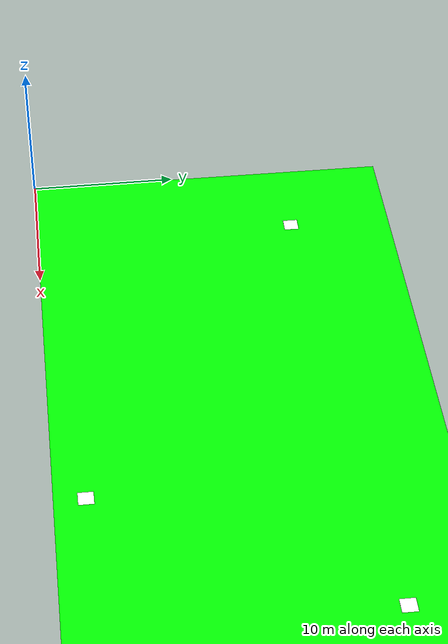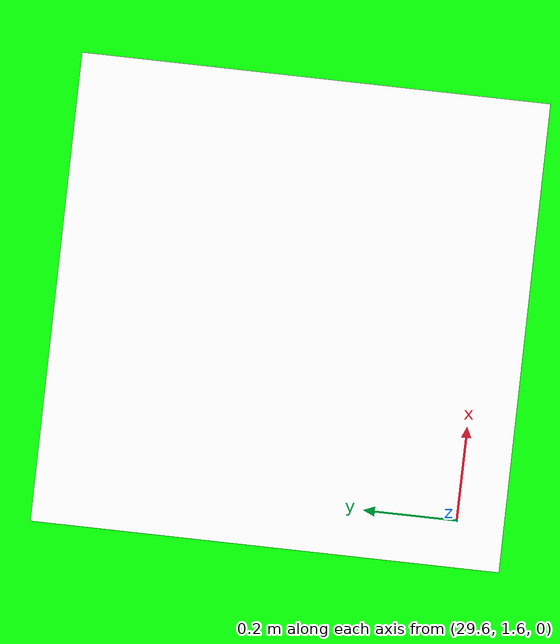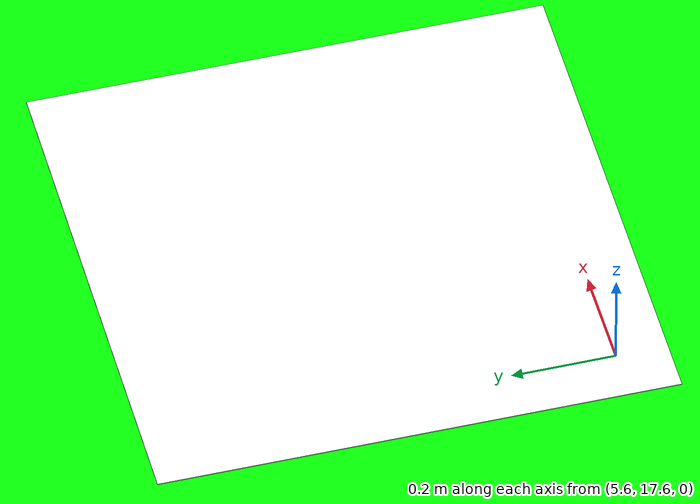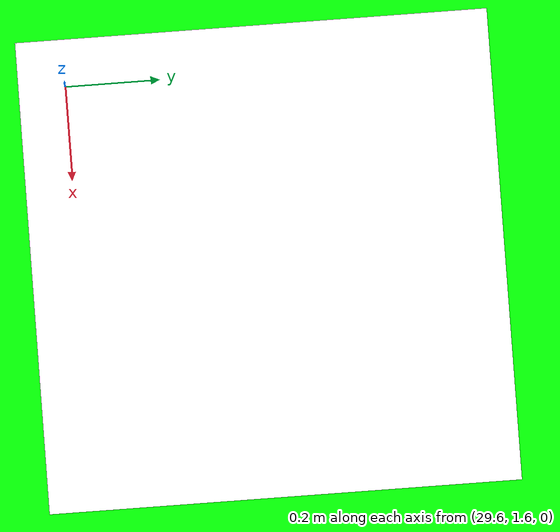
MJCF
<mujoco model="field (v0.1)">
    <compiler inertiafromgeom="true" angle="degree"/>
	<option	timestep="0.01" gravity="0 0 -9.81"/>

	<asset>
		<material name="MatGnd" specular="1" shininess=".3" reflectance="0" rgba="0 1 0 1" />
		<material name="MatSpot" specular="1" shininess="0" reflectance="0.5" rgba="1 1 1 1"/>
		<material name="MatInit" rgba="0.8 0 0 1"/>
	</asset>

	<default>
		<geom contype="1" conaffinity="1"/>
		<mesh scale="1 1 1"/>
	</default>

    <worldbody>
		<camera name="overview" mode="fixed" pos="22 12.5 35"/>
		<light directional="true" cutoff="4" exponent="20" diffuse="1 1 1" specular="0 0 0" pos="0 .3 2.5" dir="0 -.3 -2.5 "/>
		<geom name="ground" type="plane" pos="22 12.5 0" size="22 12.5 4" material="MatGnd"/>
		<geom name="init" type="plane" pos="3 3 .001" size=".5 .5 .1" conaffinity="0" contype="0" material="MatInit"/>
		<geom name="spot-0" type="box" pos="6 18 .001" size=".5 .5 .001" material="MatSpot"/>
		<geom name="spot-1" type="box" pos="30 2 .001" size=".5 .5 .001" material="MatSpot"/>
		<geom name="spot-2" type="box" pos="40 20 .001" size=".5 .5 .001" material="MatSpot"/>
	</worldbody>
</mujoco>
